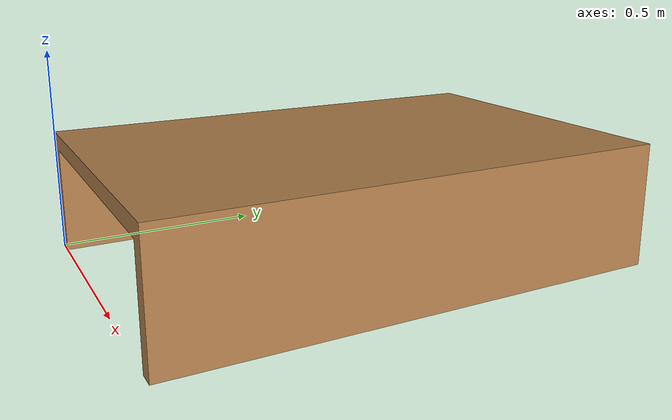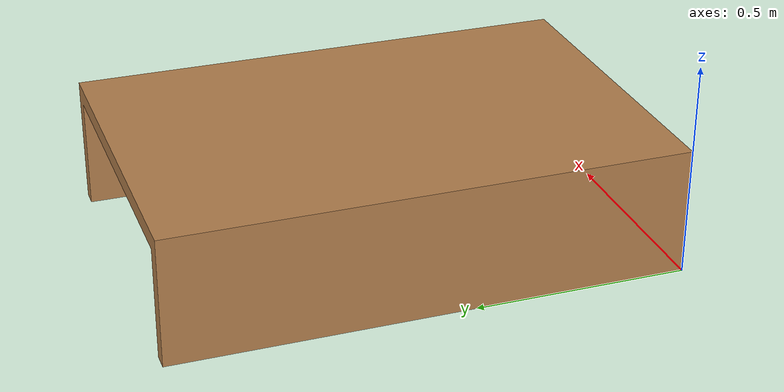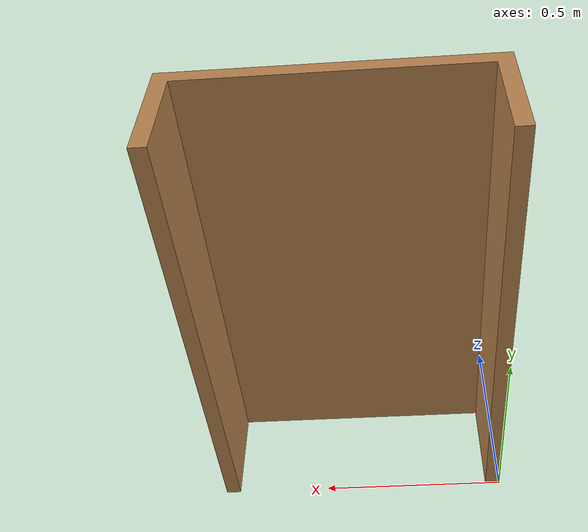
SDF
<sdf version="1.4">
  <model name="reviews_table">
    <static>1</static>
    <link name="link">

      <collision name="colision1">
        <pose>0 0 0 0 0 0</pose>
        <geometry>
          <mesh>
            <uri>model://reviews_table/meshes/reviews_table.stl</uri>
	    <scale> 1 1 1 </scale>
          </mesh>
        </geometry>
        <surface>
          <bounce />
          <friction>
            <ode />
          </friction>
          <contact>
            <ode />
          </contact>
        </surface>
      </collision>

      <visual name="visual1">
        <pose>0 0 0 0 0 0</pose>
        <geometry>
          <mesh>
            <uri>model://reviews_table/meshes/reviews_table.stl</uri>
	    <scale> 1 1 1 </scale>
          </mesh>
        </geometry>
        <material>
          <script>
            <uri>file://media/materials/scripts/gazebo.material</uri>
            <name>Gazebo/WoodFloor</name>
          </script>
        </material>
      </visual>

      <velocity_decay>
        <linear>0.000000</linear>
        <angular>0.000000</angular>
      </velocity_decay>
      <self_collide>0</self_collide>
      <kinematic>0</kinematic>
      <gravity>1</gravity>
    </link>
  </model>
</sdf>
